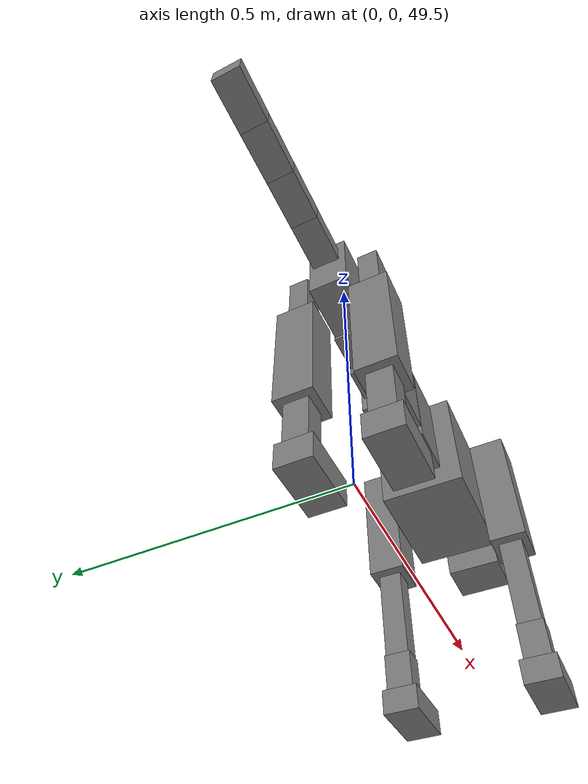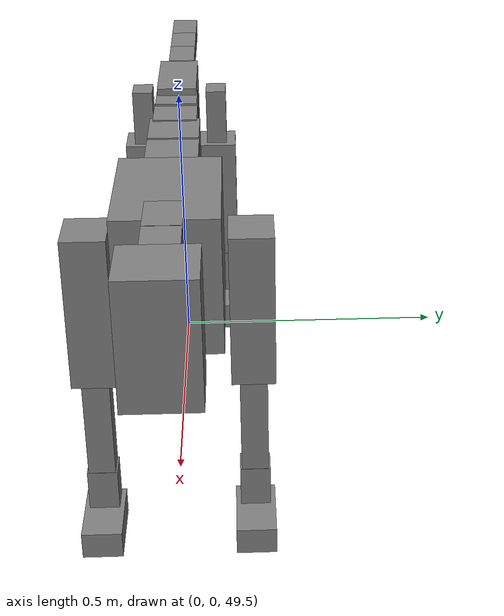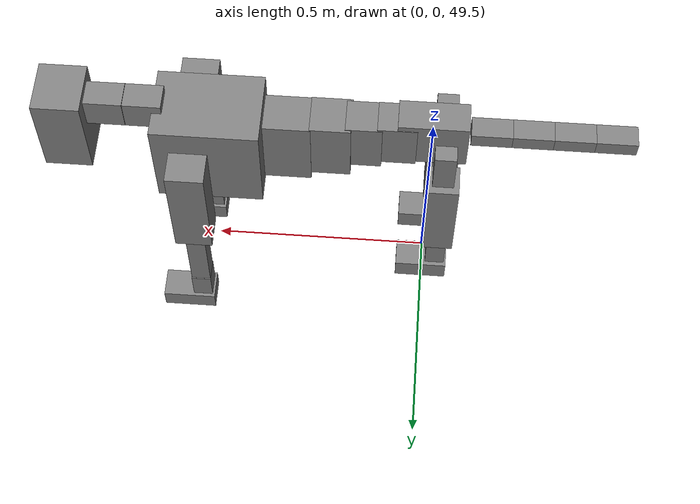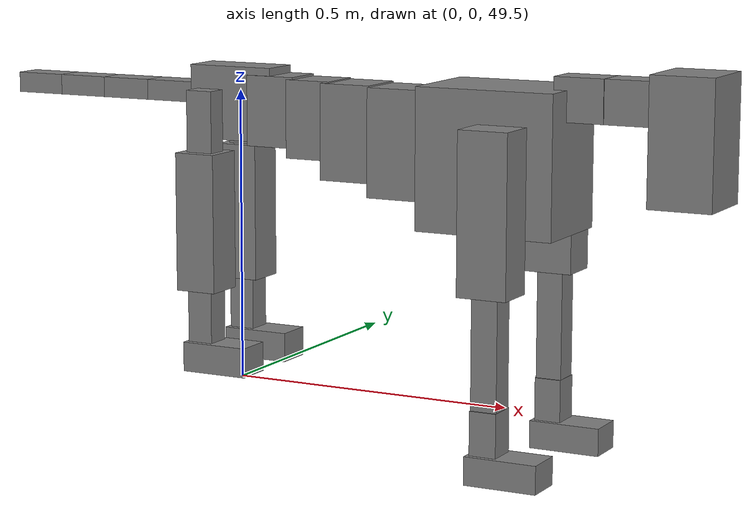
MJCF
<mujoco model="dog">

    <default>
        <joint armature="0.02" stiffness="1" damping="0.2" limited="true"/>
        <geom condim="3" friction="1 0.05 0.05" margin="0.01"/>
        <motor ctrllimited="true" ctrlrange="-1.0 1.0" forcelimited="true" gear="50"/>
    </default>

    <compiler inertiafromgeom="true" angle="radian"/>

    <option timestep="0.016" iterations="50" tolerance="1e-10" solver="Newton" jacobian="dense" cone="pyramidal"/>

    <size nconmax="20000" njmax="60000" nstack="5000000"/>
    <visual>
        <map force="0.1" zfar="30"/>
        <rgba haze="0.15 0.25 0.35 1"/>
        <quality shadowsize="2048"/>
        <global offwidth="800" offheight="800"/>
    </visual>

    <asset>
        <texture type="skybox" builtin="gradient" rgb1="0.3 0.5 0.7" rgb2="0 0 0" width="512" height="512"/>
        <texture name="texplane" type="2d" builtin="checker" rgb1=".2 .3 .4" rgb2=".1 0.15 0.2" width="512" height="512"
                 mark="cross" markrgb=".8 .8 .8"/>
        <texture name="texgeom" type="cube" builtin="flat" mark="cross" width="127" height="1278" rgb1="0.8 0.6 0.4"
                 rgb2="0.8 0.6 0.4" markrgb="1 1 1" random="0.01"/>

        <material name="matplane" reflectance="0.3" texture="texplane" texrepeat="1 1" texuniform="true"/>
        <material name="matgeom" texture="texgeom" texuniform="true" rgba="0.8 0.6 .4 1"/>
    </asset>

    <worldbody>
        <geom name="floor" pos="0 0 0" size="0 0 .25" type="plane" material="matplane" condim="3"/>

        <light directional="false" diffuse=".2 .2 .2" specular="0 0 0" pos="0 0 5" dir="0 0 -1" castshadow="false"/>
        <light mode="targetbodycom" target="torso" directional="false" diffuse=".8 .8 .8" specular="0.3 0.3 0.3"
               pos="0 0 4.0" dir="0 0 -1"/>

        <body name="root" pos="0 0 50">
            <freejoint name="root_1"/>
            <geom type="box" pos="0 0 -0.02" size="0.0774  0.0358  0.063" density="2030"/>

            <body name="spine1" pos="0.054 0 0">
                <joint name="spine1_y" axis="0 1 0" range="0 0.7" limited="true"/>
                <geom type="box" pos="0.02375 0 -0.03" size="0.04375  0.0375  0.05985" density="2030"/>

                <body name="spine2" pos="0.0612 0 0">
                    <joint name="spine2_y" axis="0 1 0" range="-0.15 0.15" limited="true"/>
                    <geom type="box" pos="0.03555  0  -0.04" size="0.04055  0.039  0.06615" density="2030"/>

                    <body name="spine3" pos="0.0730 0 0">
                        <joint name="spine3_y" axis="0 1 0" range="-0.15 0.15" limited="true"/>
                        <geom type="box" pos="0.03555  0  -0.057" size="0.04555  0.0445  0.081" density="2030"/>

                        <body name="spine4" pos="0.0780 0 0">
                            <joint name="spine4_y" axis="0 1 0" range="-0.15 0.15" limited="true"/>
                            <geom type="box" pos="0.05265  0  -0.07" size="0.05265  0.045  0.09135" density="2030"/>

                            <body name="torso" pos="0.1082 0 0">
                                <joint name="torso_y" axis="0 1 0" range="-0.15 0.15" limited="true"/>
                                <geom type="box" pos="0.11925  0  -0.085" size="0.11925  0.085  0.11745"
                                      density="2030"/>

                                <body name="neck1" pos="0.2160  0   0.0180">
                                    <joint name="neck1_y" axis="0 1 0" range="-1.2  -1" limited="true"/>
                                    <geom type="box" pos="0.0423  0  0" size="0.0423  0.03  0.036" density="2325"/>

                                    <body name="neck2" pos="0.0853  0  0">
                                        <joint name="neck2_y" axis="0 1 0" range="0.1  0" limited="true"/>
                                        <geom type="box" pos="0.0423  0  0" size="0.0423  0.03  0.036" density="2325"/>

                                        <body name="head" pos="0.0853  0  0">
                                            <joint name="head_y" axis="0 1 0" range="-0.3  -0.2" limited="true"/>
                                            <geom type="box" pos="0.0531  0  -0.055" size="0.0531  0.06  0.1044"
                                                  density="4030"/>

                                        </body>
                                    </body>
                                </body>

                                <body name="front_shoulder" pos="0.156  0   -0.0480">
                                    <joint name="front_shoulder_y" axis="0 1 0" range="-1 1.5" limited="true"/>
                                    <geom type="box" pos="0 0.13 -0.1060" size="0.0425  0.0363  0.1327" density="1158"/>
                                    <geom type="box" pos="0 -0.13 -0.1060" size="0.0425  0.0363  0.1327"
                                          density="1158"/>

                                    <body name="front_elbow" pos="0  0  -0.2121">
                                        <joint name="front_elbow_y" axis="0 1 0" range="-2 0" limited="true"/>
                                        <geom type="box" pos="0 0.13 -0.1115" size="0.0224  0.0229  0.1115"
                                              density="1081"/>
                                        <geom type="box" pos="0 -0.13 -0.1115" size="0.0224  0.0229  0.1115"
                                              density="1081"/>

                                        <body name="front_wrist" pos="0  0  -0.2229">
                                            <joint name="front_wrist_y" axis="0 1 0" range="-0.2 0" limited="true"/>
                                            <geom type="box" pos="0 0.13 -0.0373" size="0.0230  0.0256  0.0505"
                                                  density="1664"/>
                                            <geom type="box" pos="0 -0.13 -0.0373" size="0.0230  0.0256  0.0505"
                                                  density="1664"/>

                                            <body name="front_finger_end" pos="0  0  -0.0746">
                                                <joint name="front_finger_y" axis="0 1 0" range="-0.4 1"
                                                       limited="true"/>
                                                <geom type="box" pos="0.0339  0.13  -0.0086"
                                                      size="0.0621  0.0339  0.0236" density="1515"/>
                                                <geom type="box" pos="0.0339  -0.13  -0.0086"
                                                      size="0.0621  0.0339  0.0236" density="1515"/>

                                            </body>

                                        </body>
                                    </body>
                                </body>

                            </body>
                        </body>
                    </body>
                </body>
            </body>

            <body name="back_hip" pos="-0.03 0 -0.018">
                <joint name="back_hip_y" axis="0 1 0" range="-1.5 0.3" limited="true"/>
                <geom type="box" pos="0 0.07 -0.0488" size="0.0239  0.0188  0.0716" density="1154"/>
                <geom type="box" pos="0 -0.07 -0.0488" size="0.0239  0.0188  0.0716" density="1154"/>

                <body name="back_knee" pos="0  0  -0.0976">
                    <joint name="back_knee_y" axis="0 1 0" range="0 2.8" limited="true"/>
                    <geom type="box" pos="0 0.07 -0.1026" size="0.0364  0.0358  0.1181" density="1227"/>
                    <geom type="box" pos="0 -0.07 -0.1026" size="0.0364  0.0358  0.1181" density="1227"/>

                    <body name="back_ankle" pos="0  0  -0.2052">
                        <joint name="back_ankle_y" axis="0 1 0" range="-2.2 0" limited="true"/>
                        <geom type="box" pos="0 0.07 -0.0602" size="0.0225  0.0225  0.0715" density="1284"/>
                        <geom type="box" pos="0 -0.07 -0.0602" size="0.0225  0.0225  0.0715" density="1284"/>

                        <body name="back_toe_end" pos="0  0  -0.1205">
                            <joint name="back_toe_y" axis="0 1 0" range="-0.4 1" limited="true"/>
                            <geom type="box" pos="0.0325  0.07  -0.0103" size="0.0597  0.0325  0.0253" density="1515"/>
                            <geom type="box" pos="0.0325  -0.07  -0.0103" size="0.0597  0.0325  0.0253" density="1515"/>

                        </body>
                    </body>
                </body>
            </body>

            <body name="tail1" pos="-0.074 0 -0.006">
                <joint name="tail1_y" axis="0 1 0" range="-0.2 0.2" limited="true"/>
                <geom type="box" pos="-0.0536  0  0" size="0.045  0.025  0.0175" density="1587"/>

                <body name="tail2" pos="-0.09 0 0">
                    <joint name="tail2_y" axis="0 1 0" range="-0.2 0.2" limited="true"/>
                    <geom type="box" pos="-0.0536  0  0" size="0.045  0.025  0.0175" density="1587"/>

                    <body name="tail3" pos="-0.09 0 0">
                        <joint name="tail3_y" axis="0 1 0" range="-0.2 0.2" limited="true"/>
                        <geom type="box" pos="-0.0536  0  0" size="0.045  0.025  0.0175" density="1587"/>

                        <body name="tail4" pos="-0.09 0 0">
                            <joint name="tail4_y" axis="0 1 0" range="-0.2 0.2" limited="true"/>
                            <geom type="box" pos="-0.0536  0  0" size="0.045  0.025  0.0175" density="1587"/>

                        </body>
                    </body>
                </body>
            </body>
        </body>
    </worldbody>

    <actuator>
        <motor joint="spine1_y" forcerange="-150 150     "/>
        <motor joint="spine2_y" forcerange="-150 150     "/>
        <motor joint="spine3_y" forcerange="-150 150     "/>
        <motor joint="spine4_y" forcerange="-150 150     "/>
        <motor joint="torso_y" forcerange="-150 150     "/>
        <motor joint="neck1_y" forcerange="-100 100       "/>
        <motor joint="neck2_y" forcerange="-100 100       "/>
        <motor joint="head_y" forcerange="-150 150       "/>
        <motor joint="front_shoulder_y" forcerange="-187.91 154.24"/>
        <motor joint="front_elbow_y" forcerange="-102.62 164.09"/>
        <motor joint="front_wrist_y" forcerange="-78.53 126.31"/>
        <motor joint="front_finger_y" forcerange="-81.03 59.58"/>
        <motor joint="back_hip_y" forcerange="-242.84 207.49"/>
        <motor joint="back_knee_y" forcerange="-330.14 391.19"/>
        <motor joint="back_angle_y" forcerange="-50.47 209.14"/>
        <motor joint="back_toe_y" forcerange="-116.92 63.47"/>
        <motor joint="tail1_y" forcerange="-50 50     "/>
        <motor joint="tail2_y" forcerange="-50 50     "/>
        <motor joint="tail3_y" forcerange="-50 50     "/>
        <motor joint="tail4_y" forcerange="-50 50     "/>
    </actuator>
</mujoco>
